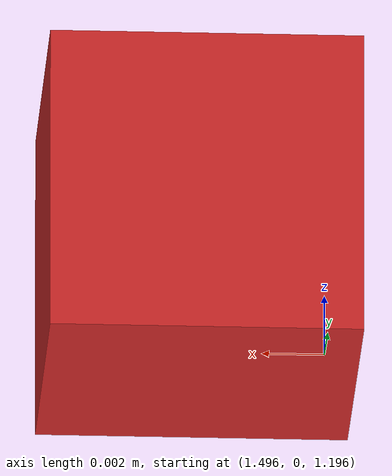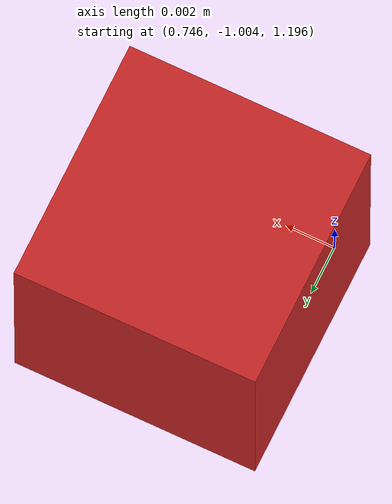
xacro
<?xml version="1.0"?>
<robot xmlns:xacro="http://ros.org/wiki/xacro"
       name="rain_test_env" >

<!-- (0) Stand -->

  <link name="world"/>

<!-- (0-A) Simulated Camera (Side View)-->
  <xacro:property name="camera_size" value="0.01" />  <!-- Size of square 'camera' box -->

  <!-- Camera -->
  <link name="camera_link">
    <collision>
      <origin xyz="0 0 0" rpy="0 0 0"/>
      <geometry>
    <box size="${camera_size} ${camera_size} ${camera_size}"/>
      </geometry>
    </collision>

    <visual>
      <origin xyz="0 0 0" rpy="0 0 0"/>
      <geometry>
    <box size="${camera_size} ${camera_size} ${camera_size}"/>
      </geometry>
      <material name="red"/>
    </visual>

    <inertial>
      <mass value="1e-5" />
      <origin xyz="0 0 0" rpy="0 0 0"/>
      <inertia ixx="1e-6" ixy="0" ixz="0" iyy="1e-6" iyz="0" izz="1e-6" />
    </inertial>
  </link>

  <!-- camera position -->
  <joint name="joint_world_to_camera" type="fixed">
    <axis xyz="0 1 0" />
    <origin xyz="0.75 -1 1.2" rpy="0 0 ${pi/2}"/>
    <parent link="world"/>
    <child link="camera_link"/>
  </joint>

  <!-- camera plugin -->
  <gazebo reference="camera_link">
    <sensor type="camera" name="usb_cam_1">
      <update_rate>30.0</update_rate>
      <camera name="head">
        <horizontal_fov>1.3962634</horizontal_fov>
        <image>
          <width>800</width>
          <height>800</height>
          <format>R8G8B8</format>
        </image>
        <clip>
          <near>0.02</near>
          <far>300</far>
        </clip>
        <noise>
          <type>gaussian</type>
          <!-- Noise is sampled independently per pixel on each frame.
               That pixel's noise value is added to each of its color
               channels, which at that point lie in the range [0,1]. -->
          <mean>0.0</mean>
          <stddev>0.007</stddev>
        </noise>
      </camera>
      <plugin name="camera_controller" filename="libgazebo_ros_camera.so">
        <alwaysOn>true</alwaysOn>
        <updateRate>0.0</updateRate>
        <cameraName>usb_cam_1</cameraName>
        <imageTopicName>image_raw</imageTopicName>
        <cameraInfoTopicName>camera_info</cameraInfoTopicName>
        <frameName>camera_link</frameName>
        <hackBaseline>0.07</hackBaseline>
        <distortionK1>0.0</distortionK1>
        <distortionK2>0.0</distortionK2>
        <distortionK3>0.0</distortionK3>
        <distortionT1>0.0</distortionT1>
        <distortionT2>0.0</distortionT2>
      </plugin>
    </sensor>
  </gazebo>

<!-- (0-B) Simulated Camera (Front View)-->
  <!-- Camera -->
  <link name="camera_link_front">
    <collision>
      <origin xyz="0 0 0" rpy="0 0 0"/>
      <geometry>
    <box size="${camera_size} ${camera_size} ${camera_size}"/>
      </geometry>
    </collision>

    <visual>
      <origin xyz="0 0 0" rpy="0 0 0"/>
      <geometry>
    <box size="${camera_size} ${camera_size} ${camera_size}"/>
      </geometry>
      <material name="red"/>
    </visual>

    <inertial>
      <mass value="1e-5" />
      <origin xyz="0 0 0" rpy="0 0 0"/>
      <inertia ixx="1e-6" ixy="0" ixz="0" iyy="1e-6" iyz="0" izz="1e-6" />
    </inertial>
  </link>

  <!-- camera position -->
  <joint name="joint_world_to_camera_front" type="fixed">
    <axis xyz="0 1 0" />
    <origin xyz="1.5 0 1.2" rpy="0 0 ${pi}"/>
    <parent link="world"/>
    <child link="camera_link_front"/>
  </joint>

  <!-- camera plugin -->
  <gazebo reference="camera_link_front">
    <sensor type="camera" name="usb_cam_2">
      <update_rate>30.0</update_rate>
      <camera name="head">
        <horizontal_fov>1.3962634</horizontal_fov>
        <image>
          <width>800</width>
          <height>800</height>
          <format>R8G8B8</format>
        </image>
        <clip>
          <near>0.02</near>
          <far>300</far>
        </clip>
        <noise>
          <type>gaussian</type>
          <!-- Noise is sampled independently per pixel on each frame.
               That pixel's noise value is added to each of its color
               channels, which at that point lie in the range [0,1]. -->
          <mean>0.0</mean>
          <stddev>0.007</stddev>
        </noise>
      </camera>
      <plugin name="camera_controller" filename="libgazebo_ros_camera.so">
        <alwaysOn>true</alwaysOn>
        <updateRate>0.0</updateRate>
        <cameraName>usb_cam_2</cameraName>
        <imageTopicName>image_raw</imageTopicName>
        <cameraInfoTopicName>front_camera_info</cameraInfoTopicName>
        <frameName>front_camera_link</frameName>
        <hackBaseline>0.07</hackBaseline>
        <distortionK1>0.0</distortionK1>
        <distortionK2>0.0</distortionK2>
        <distortionK3>0.0</distortionK3>
        <distortionT1>0.0</distortionT1>
        <distortionT2>0.0</distortionT2>
      </plugin>
    </sensor>
  </gazebo>

<!-- (0-C) Simulated Camera (Top View)-->
  <!-- Camera -->
  <link name="camera_link_top">
    <collision>
      <origin xyz="0 0 0" rpy="0 0 0"/>
      <geometry>
    <box size="${camera_size} ${camera_size} ${camera_size}"/>
      </geometry>
    </collision>

    <visual>
      <origin xyz="0 0 0" rpy="0 0 0"/>
      <geometry>
    <box size="${camera_size} ${camera_size} ${camera_size}"/>
      </geometry>
      <material name="red"/>
    </visual>

    <inertial>
      <mass value="1e-5" />
      <origin xyz="0 0 0" rpy="0 0 0"/>
      <inertia ixx="1e-6" ixy="0" ixz="0" iyy="1e-6" iyz="0" izz="1e-6" />
    </inertial>
  </link>

  <!-- camera position -->
  <joint name="joint_world_to_camera_top" type="fixed">
    <axis xyz="0 1 0" />
    <origin xyz="0.75 0 2" rpy="0 ${pi/2} ${pi/2}"/>
    <parent link="world"/>
    <child link="camera_link_top"/>
  </joint>

  <!-- camera plugin -->
  <gazebo reference="camera_link_top">
    <sensor type="camera" name="usb_cam_3">
      <update_rate>30.0</update_rate>
      <camera name="head">
        <horizontal_fov>1.3962634</horizontal_fov>
        <image>
          <width>800</width>
          <height>800</height>
          <format>R8G8B8</format>
        </image>
        <clip>
          <near>0.02</near>
          <far>300</far>
        </clip>
        <noise>
          <type>gaussian</type>
          <!-- Noise is sampled independently per pixel on each frame.
               That pixel's noise value is added to each of its color
               channels, which at that point lie in the range [0,1]. -->
          <mean>0.0</mean>
          <stddev>0.007</stddev>
        </noise>
      </camera>
      <plugin name="camera_controller" filename="libgazebo_ros_camera.so">
        <alwaysOn>true</alwaysOn>
        <updateRate>0.0</updateRate>
        <cameraName>usb_cam_3</cameraName>
        <imageTopicName>image_raw</imageTopicName>
        <cameraInfoTopicName>top_camera_info</cameraInfoTopicName>
        <frameName>top_camera_link</frameName>
        <hackBaseline>0.07</hackBaseline>
        <distortionK1>0.0</distortionK1>
        <distortionK2>0.0</distortionK2>
        <distortionK3>0.0</distortionK3>
        <distortionT1>0.0</distortionT1>
        <distortionT2>0.0</distortionT2>
      </plugin>
    </sensor>
  </gazebo>

</robot>
